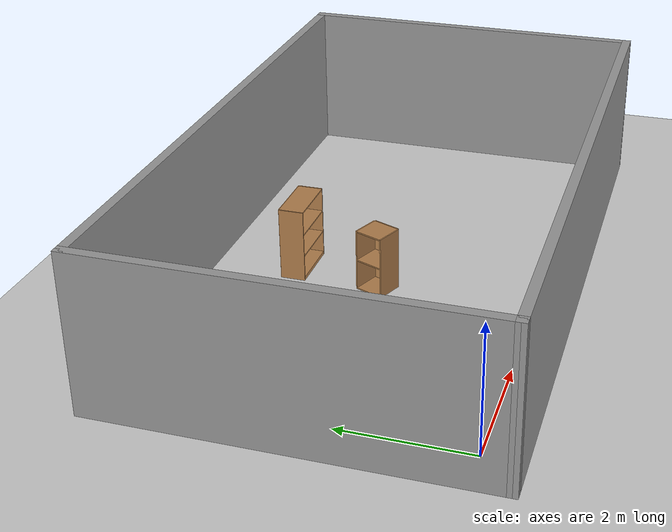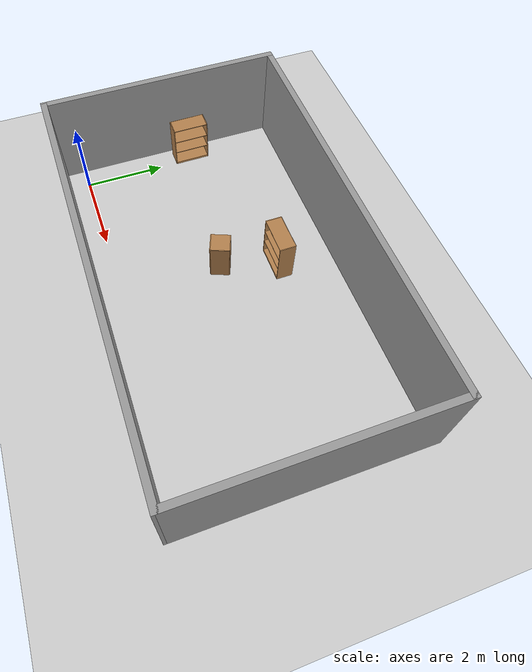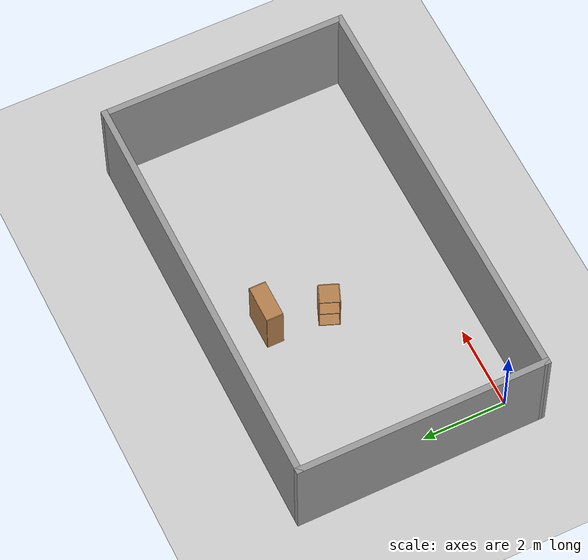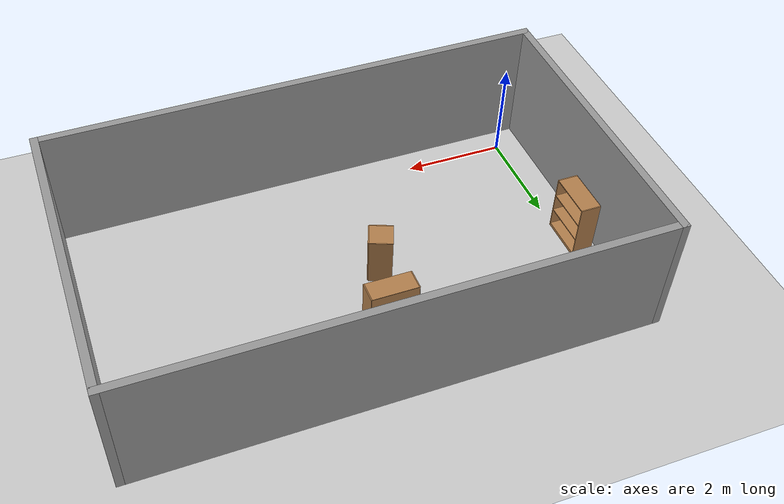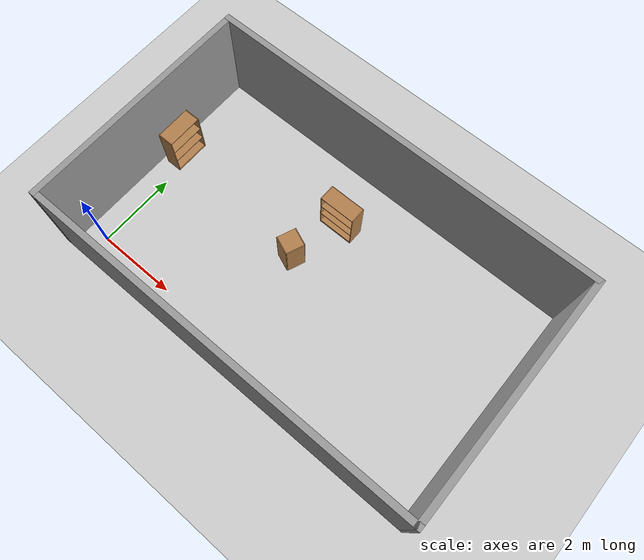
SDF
<sdf version="1.6">
 <world name="default">
  <model name="ground_plane">
   <static>1</static>
   <link name="link">
    <collision name="collision">
     <geometry><plane><normal>0 0 1</normal><size>100 100</size></plane></geometry>
     <surface>
      <contact><collide_bitmask>65535</collide_bitmask></contact>
      <friction><ode><mu>100</mu><mu2>50</mu2></ode></friction>
     </surface>
    </collision>
    <visual name="visual">
     <cast_shadows>0</cast_shadows>
     <geometry><plane><normal>0 0 1</normal><size>100 100</size></plane></geometry>
     <material>
      <script><uri>file://media/materials/scripts/gazebo.material</uri><name>Gazebo/Grey</name></script>
     </material>
    </visual>
   </link>
  </model>
  <model name="big_home">
   <pose>4.31 2.3759 0 0 -0 0</pose>
   <link name="Wall_0">
    <collision name="Wall_0_Collision">
     <geometry><box><size>10 0.15 2.5</size></box></geometry>
     <pose>0 0 1.25 0 -0 0</pose>
    </collision>
    <visual name="Wall_0_Visual">
     <pose>0 0 1.25 0 -0 0</pose>
     <geometry><box><size>10 0.15 2.5</size></box></geometry>
     <material>
      <script><uri>file://media/materials/scripts/gazebo.material</uri><name>Gazebo/Grey</name></script>
      <ambient>1 1 1 1</ambient>
     </material>
     <meta><layer>0</layer></meta>
    </visual>
    <pose>0 -2.91241 0 0 -0 0.002538</pose>
   </link>
   <link name="Wall_13">
    <collision name="Wall_13_Collision">
     <geometry><box><size>6 0.15 2.5</size></box></geometry>
     <pose>0 0 1.25 0 -0 0</pose>
    </collision>
    <visual name="Wall_13_Visual">
     <pose>0 0 1.25 0 -0 0</pose>
     <geometry><box><size>6 0.15 2.5</size></box></geometry>
     <material>
      <script><uri>file://media/materials/scripts/gazebo.material</uri><name>Gazebo/Grey</name></script>
      <ambient>1 1 1 1</ambient>
     </material>
     <meta><layer>0</layer></meta>
    </visual>
    <pose>-4.925 9.5e-05 0 0 -0 1.5708</pose>
   </link>
   <link name="Wall_16">
    <collision name="Wall_16_Collision">
     <geometry><box><size>10 0.15 2.5</size></box></geometry>
     <pose>0 0 1.25 0 -0 0</pose>
    </collision>
    <visual name="Wall_16_Visual">
     <pose>0 0 1.25 0 -0 0</pose>
     <geometry><box><size>10 0.15 2.5</size></box></geometry>
     <material>
      <script><uri>file://media/materials/scripts/gazebo.material</uri><name>Gazebo/Grey</name></script>
      <ambient>1 1 1 1</ambient>
     </material>
     <meta><layer>0</layer></meta>
    </visual>
    <pose>0 2.92509 0 0 -0 0</pose>
   </link>
   <link name="Wall_18">
    <collision name="Wall_18_Collision">
     <geometry><box><size>5.975 0.15 2.5</size></box></geometry>
     <pose>0 0 1.25 0 -0 0</pose>
    </collision>
    <visual name="Wall_18_Visual">
     <pose>0 0 1.25 0 -0 0</pose>
     <geometry><box><size>5.975 0.15 2.5</size></box></geometry>
     <material>
      <script><uri>file://media/materials/scripts/gazebo.material</uri><name>Gazebo/Grey</name></script>
      <ambient>1 1 1 1</ambient>
     </material>
     <meta><layer>0</layer></meta>
    </visual>
    <pose>4.925 0.012595 0 0 0 -1.5708</pose>
   </link>
   <static>1</static>
  </model>
  <model name="bookshelf_0">
   <static>1</static>
   <link name="link">
    <inertial><mass>1</mass></inertial>
    <collision name="back">
     <pose>0 0.005 0.6 0 -0 0</pose>
     <geometry><box><size>0.9 0.01 1.2</size></box></geometry>
    </collision>
    <visual name="visual1">
     <pose>0 0.005 0.6 0 -0 0</pose>
     <geometry><box><size>0.9 0.01 1.2</size></box></geometry>
     <material>
      <script><uri>file://media/materials/scripts/gazebo.material</uri><name>Gazebo/Wood</name></script>
     </material>
    </visual>
    <collision name="left_side">
     <pose>0.45 -0.195 0.6 0 -0 0</pose>
     <geometry><box><size>0.02 0.4 1.2</size></box></geometry>
    </collision>
    <visual name="visual2">
     <pose>0.45 -0.195 0.6 0 -0 0</pose>
     <geometry><box><size>0.02 0.4 1.2</size></box></geometry>
     <material>
      <script><uri>file://media/materials/scripts/gazebo.material</uri><name>Gazebo/Wood</name></script>
     </material>
    </visual>
    <collision name="right_side">
     <pose>-0.45 -0.195 0.6 0 -0 0</pose>
     <geometry><box><size>0.02 0.4 1.2</size></box></geometry>
    </collision>
    <visual name="visual3">
     <pose>-0.45 -0.195 0.6 0 -0 0</pose>
     <geometry><box><size>0.02 0.4 1.2</size></box></geometry>
     <material>
      <script><uri>file://media/materials/scripts/gazebo.material</uri><name>Gazebo/Wood</name></script>
     </material>
    </visual>
    <collision name="bottom">
     <pose>0 -0.195 0.03 0 -0 0</pose>
     <geometry><box><size>0.88 0.4 0.06</size></box></geometry>
    </collision>
    <visual name="visual4">
     <pose>0 -0.195 0.03 0 -0 0</pose>
     <geometry><box><size>0.88 0.4 0.06</size></box></geometry>
     <material>
      <script><uri>file://media/materials/scripts/gazebo.material</uri><name>Gazebo/Wood</name></script>
     </material>
    </visual>
    <collision name="top">
     <pose>0 -0.195 1.19 0 -0 0</pose>
     <geometry><box><size>0.88 0.4 0.02</size></box></geometry>
    </collision>
    <visual name="visual5">
     <pose>0 -0.195 1.19 0 -0 0</pose>
     <geometry><box><size>0.88 0.4 0.02</size></box></geometry>
     <material>
      <script><uri>file://media/materials/scripts/gazebo.material</uri><name>Gazebo/Wood</name></script>
     </material>
    </visual>
    <collision name="low_shelf">
     <pose>0 -0.195 0.43 0 -0 0</pose>
     <geometry><box><size>0.88 0.4 0.02</size></box></geometry>
    </collision>
    <visual name="visual6">
     <pose>0 -0.195 0.43 0 -0 0</pose>
     <geometry><box><size>0.88 0.4 0.02</size></box></geometry>
     <material>
      <script><uri>file://media/materials/scripts/gazebo.material</uri><name>Gazebo/Wood</name></script>
     </material>
    </visual>
    <collision name="high_shelf">
     <pose>0 -0.195 0.8 0 -0 0</pose>
     <geometry><box><size>0.88 0.4 0.02</size></box></geometry>
    </collision>
    <visual name="visual7">
     <pose>0 -0.195 0.8 0 -0 0</pose>
     <geometry><box><size>0.88 0.4 0.02</size></box></geometry>
     <material>
      <script><uri>file://media/materials/scripts/gazebo.material</uri><name>Gazebo/Wood</name></script>
     </material>
    </visual>
   </link>
   <pose>-0.384157 2.91639 0 0 -0 1.57562</pose>
  </model>
  <model name="cabinet_1">
   <static>1</static>
   <link name="cabinet_bottom_plate">
    <inertial>
     <pose>0 0 -1 0 -0 0</pose>
     <inertia><ixx>2.05</ixx><ixy>0</ixy><ixz>0</ixz><iyy>2.05</iyy><iyz>0</iyz><izz>2.05</izz></inertia>
     <mass>25</mass>
    </inertial>
    <collision name="cabinet_bottom_plate_geom">
     <pose>0 0 0.01 0 -0 0</pose>
     <geometry><box><size>0.45 0.45 0.02</size></box></geometry>
    </collision>
    <visual name="cabinet_bottom_plate_geom_visual">
     <pose>0 0 0.01 0 -0 0</pose>
     <geometry><box><size>0.45 0.45 0.02</size></box></geometry>
     <material>
      <script><uri>file://media/materials/scripts/gazebo.material</uri><name>Gazebo/Wood</name></script>
     </material>
    </visual>
    <collision name="cabinet_bottom_plate_geom_cabinet_back_plate">
     <pose>0.235 0 0.51 0 -0 0</pose>
     <geometry><box><size>0.02 0.45 1.02</size></box></geometry>
    </collision>
    <visual name="cabinet_bottom_plate_geom_cabinet_back_plate_visual">
     <pose>0.235 0 0.51 0 -0 0</pose>
     <geometry><box><size>0.02 0.45 1.02</size></box></geometry>
     <material>
      <script><uri>file://media/materials/scripts/gazebo.material</uri><name>Gazebo/Wood</name></script>
     </material>
    </visual>
    <collision name="cabinet_bottom_plate_geom_cabinet_left_plate">
     <pose>0 0.235 0.51 0 -0 0</pose>
     <geometry><box><size>0.45 0.02 1.02</size></box></geometry>
    </collision>
    <visual name="cabinet_bottom_plate_geom_cabinet_left_plate_visual">
     <pose>0 0.235 0.51 0 -0 0</pose>
     <geometry><box><size>0.45 0.02 1.02</size></box></geometry>
     <material>
      <script><uri>file://media/materials/scripts/gazebo.material</uri><name>Gazebo/Wood</name></script>
     </material>
    </visual>
    <collision name="cabinet_bottom_plate_geom_cabinet_middle_plate">
     <pose>0 0 0.51 0 -0 0</pose>
     <geometry><box><size>0.45 0.45 0.02</size></box></geometry>
    </collision>
    <visual name="cabinet_bottom_plate_geom_cabinet_middle_plate_visual">
     <pose>0 0 0.51 0 -0 0</pose>
     <geometry><box><size>0.45 0.45 0.02</size></box></geometry>
     <material>
      <script><uri>file://media/materials/scripts/gazebo.material</uri><name>Gazebo/Wood</name></script>
     </material>
    </visual>
    <collision name="cabinet_bottom_plate_geom_cabinet_right_plate">
     <pose>0 -0.235 0.51 0 -0 0</pose>
     <geometry><box><size>0.45 0.02 1.02</size></box></geometry>
    </collision>
    <visual name="cabinet_bottom_plate_geom_cabinet_right_plate_visual">
     <pose>0 -0.235 0.51 0 -0 0</pose>
     <geometry><box><size>0.45 0.02 1.02</size></box></geometry>
     <material>
      <script><uri>file://media/materials/scripts/gazebo.material</uri><name>Gazebo/Wood</name></script>
     </material>
    </visual>
    <collision name="cabinet_bottom_plate_geom_cabinet_top_plate">
     <pose>0 0 1.01 0 -0 0</pose>
     <geometry><box><size>0.45 0.45 0.02</size></box></geometry>
    </collision>
    <visual name="cabinet_bottom_plate_geom_cabinet_top_plate_visual">
     <pose>0 0 1.01 0 -0 0</pose>
     <geometry><box><size>0.45 0.45 0.02</size></box></geometry>
     <material>
      <script><uri>file://media/materials/scripts/gazebo.material</uri><name>Gazebo/Wood</name></script>
     </material>
    </visual>
   </link>
   <pose>3.65643 2.49049 0 0 0 -0.382941</pose>
  </model>
  <model name="bookshelf_1">
   <static>1</static>
   <link name="link">
    <inertial><mass>1</mass></inertial>
    <collision name="back">
     <pose>0 0.005 0.6 0 -0 0</pose>
     <geometry><box><size>0.9 0.01 1.2</size></box></geometry>
    </collision>
    <visual name="visual1">
     <pose>0 0.005 0.6 0 -0 0</pose>
     <geometry><box><size>0.9 0.01 1.2</size></box></geometry>
     <material>
      <script><uri>file://media/materials/scripts/gazebo.material</uri><name>Gazebo/Wood</name></script>
     </material>
    </visual>
    <collision name="left_side">
     <pose>0.45 -0.195 0.6 0 -0 0</pose>
     <geometry><box><size>0.02 0.4 1.2</size></box></geometry>
    </collision>
    <visual name="visual2">
     <pose>0.45 -0.195 0.6 0 -0 0</pose>
     <geometry><box><size>0.02 0.4 1.2</size></box></geometry>
     <material>
      <script><uri>file://media/materials/scripts/gazebo.material</uri><name>Gazebo/Wood</name></script>
     </material>
    </visual>
    <collision name="right_side">
     <pose>-0.45 -0.195 0.6 0 -0 0</pose>
     <geometry><box><size>0.02 0.4 1.2</size></box></geometry>
    </collision>
    <visual name="visual3">
     <pose>-0.45 -0.195 0.6 0 -0 0</pose>
     <geometry><box><size>0.02 0.4 1.2</size></box></geometry>
     <material>
      <script><uri>file://media/materials/scripts/gazebo.material</uri><name>Gazebo/Wood</name></script>
     </material>
    </visual>
    <collision name="bottom">
     <pose>0 -0.195 0.03 0 -0 0</pose>
     <geometry><box><size>0.88 0.4 0.06</size></box></geometry>
    </collision>
    <visual name="visual4">
     <pose>0 -0.195 0.03 0 -0 0</pose>
     <geometry><box><size>0.88 0.4 0.06</size></box></geometry>
     <material>
      <script><uri>file://media/materials/scripts/gazebo.material</uri><name>Gazebo/Wood</name></script>
     </material>
    </visual>
    <collision name="top">
     <pose>0 -0.195 1.19 0 -0 0</pose>
     <geometry><box><size>0.88 0.4 0.02</size></box></geometry>
    </collision>
    <visual name="visual5">
     <pose>0 -0.195 1.19 0 -0 0</pose>
     <geometry><box><size>0.88 0.4 0.02</size></box></geometry>
     <material>
      <script><uri>file://media/materials/scripts/gazebo.material</uri><name>Gazebo/Wood</name></script>
     </material>
    </visual>
    <collision name="low_shelf">
     <pose>0 -0.195 0.43 0 -0 0</pose>
     <geometry><box><size>0.88 0.4 0.02</size></box></geometry>
    </collision>
    <visual name="visual6">
     <pose>0 -0.195 0.43 0 -0 0</pose>
     <geometry><box><size>0.88 0.4 0.02</size></box></geometry>
     <material>
      <script><uri>file://media/materials/scripts/gazebo.material</uri><name>Gazebo/Wood</name></script>
     </material>
    </visual>
    <collision name="high_shelf">
     <pose>0 -0.195 0.8 0 -0 0</pose>
     <geometry><box><size>0.88 0.4 0.02</size></box></geometry>
    </collision>
    <visual name="visual7">
     <pose>0 -0.195 0.8 0 -0 0</pose>
     <geometry><box><size>0.88 0.4 0.02</size></box></geometry>
     <material>
      <script><uri>file://media/materials/scripts/gazebo.material</uri><name>Gazebo/Wood</name></script>
     </material>
    </visual>
   </link>
   <pose>4.00166 4.05731 0 0 -0 0</pose>
  </model>
 </world>
</sdf>
